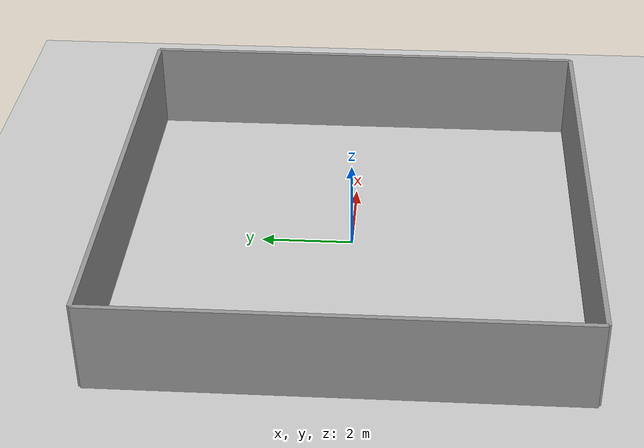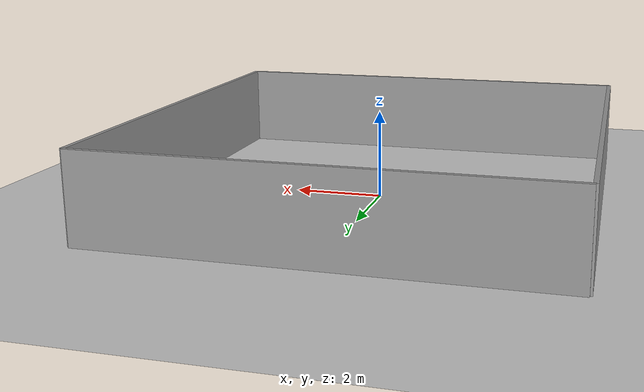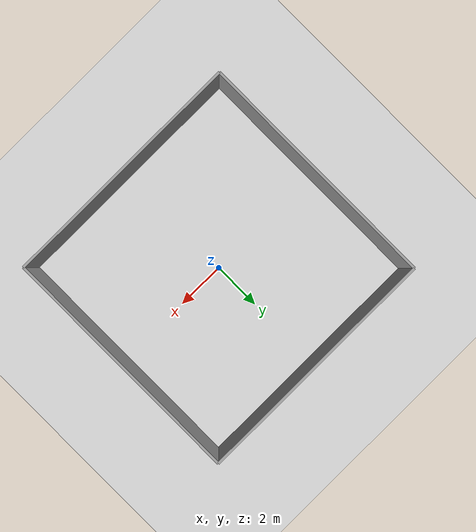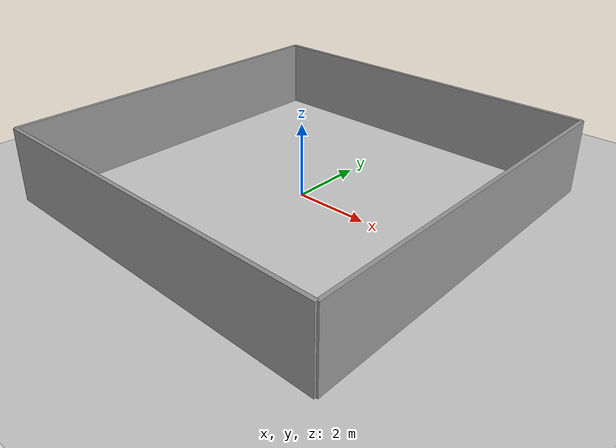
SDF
<sdf version='1.7'>
  <world name='default'>
    <light name='sun' type='directional'>
      <cast_shadows>1</cast_shadows>
      <pose>0 0 10 0 -0 0</pose>
      <diffuse>0.8 0.8 0.8 1</diffuse>
      <specular>0.2 0.2 0.2 1</specular>
      <attenuation>
        <range>1000</range>
        <constant>0.9</constant>
        <linear>0.01</linear>
        <quadratic>0.001</quadratic>
      </attenuation>
      <direction>-0.5 0.1 -0.9</direction>
    </light>
    <model name='ground_plane'>
      <static>1</static>
      <link name='link'>
        <collision name='collision'>
          <geometry>
            <plane>
              <normal>0 0 1</normal>
              <size>100 100</size>
            </plane>
          </geometry>
        </collision>
        <visual name='visual'>
          <geometry>
            <plane>
              <normal>0 0 1</normal>
              <size>100 100</size>
            </plane>
          </geometry>
          <material>
            <script>
              <uri>file://media/materials/scripts/gazebo.material</uri>
              <name>Gazebo/Grey</name>
            </script>
          </material>
        </visual>
      </link>
    </model>
    <gravity>0 0 -9.8</gravity>
    <physics type='ode'>
      <max_step_size>0.001</max_step_size>
      <real_time_factor>1</real_time_factor>
      <real_time_update_rate>1000</real_time_update_rate>
    </physics>
    <scene>
      <ambient>0.4 0.4 0.4 1</ambient>
      <background>0.7 0.7 0.7 1</background>
      <shadows>1</shadows>
    </scene>
    <!-- 简单房间：四面墙 -->
    <model name='simple_room'>
      <static>1</static>
      <!-- 后墙 -->
      <link name='back_wall'>
        <collision name='collision'>
          <geometry>
            <box>
              <size>10 0.1 2</size>
            </box>
          </geometry>
          <pose>0 -5 1 0 0 0</pose>
        </collision>
        <visual name='visual'>
          <geometry>
            <box>
              <size>10 0.1 2</size>
            </box>
          </geometry>
          <pose>0 -5 1 0 0 0</pose>
          <material>
            <script>
              <uri>file://media/materials/scripts/gazebo.material</uri>
              <name>Gazebo/Grey</name>
            </script>
          </material>
        </visual>
      </link>
      <!-- 前墙 -->
      <link name='front_wall'>
        <collision name='collision'>
          <geometry>
            <box>
              <size>10 0.1 2</size>
            </box>
          </geometry>
          <pose>0 5 1 0 0 0</pose>
        </collision>
        <visual name='visual'>
          <geometry>
            <box>
              <size>10 0.1 2</size>
            </box>
          </geometry>
          <pose>0 5 1 0 0 0</pose>
          <material>
            <script>
              <uri>file://media/materials/scripts/gazebo.material</uri>
              <name>Gazebo/Grey</name>
            </script>
          </material>
        </visual>
      </link>
      <!-- 左墙 -->
      <link name='left_wall'>
        <collision name='collision'>
          <geometry>
            <box>
              <size>0.1 10 2</size>
            </box>
          </geometry>
          <pose>-5 0 1 0 0 0</pose>
        </collision>
        <visual name='visual'>
          <geometry>
            <box>
              <size>0.1 10 2</size>
            </box>
          </geometry>
          <pose>-5 0 1 0 0 0</pose>
          <material>
            <script>
              <uri>file://media/materials/scripts/gazebo.material</uri>
              <name>Gazebo/Grey</name>
            </script>
          </material>
        </visual>
      </link>
      <!-- 右墙 -->
      <link name='right_wall'>
        <collision name='collision'>
          <geometry>
            <box>
              <size>0.1 10 2</size>
            </box>
          </geometry>
          <pose>5 0 1 0 0 0</pose>
        </collision>
        <visual name='visual'>
          <geometry>
            <box>
              <size>0.1 10 2</size>
            </box>
          </geometry>
          <pose>5 0 1 0 0 0</pose>
          <material>
            <script>
              <uri>file://media/materials/scripts/gazebo.material</uri>
              <name>Gazebo/Grey</name>
            </script>
          </material>
        </visual>
      </link>
    </model>
  </world>
</sdf>
